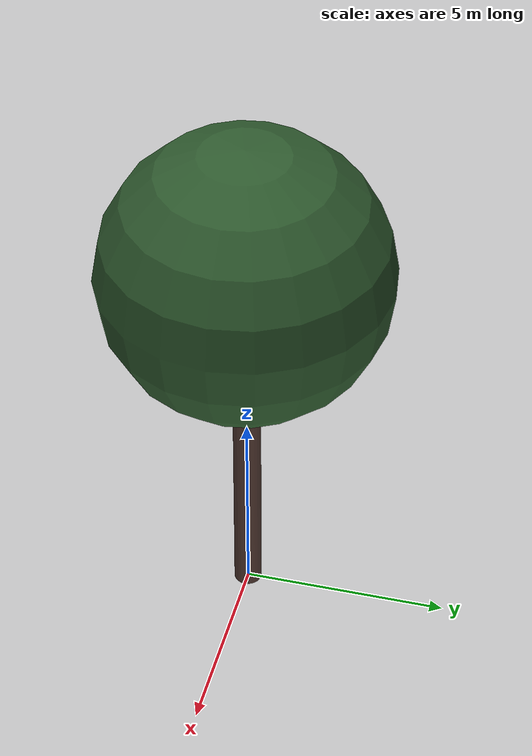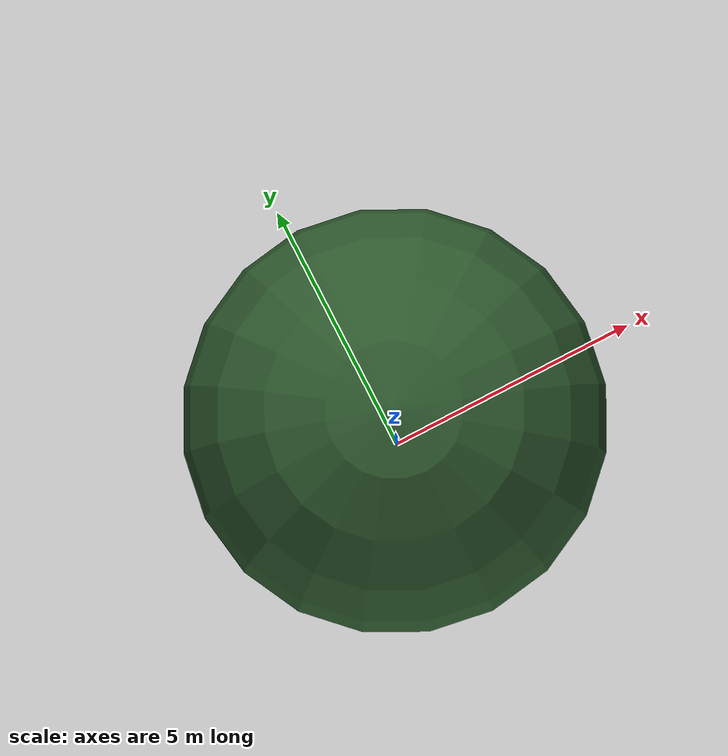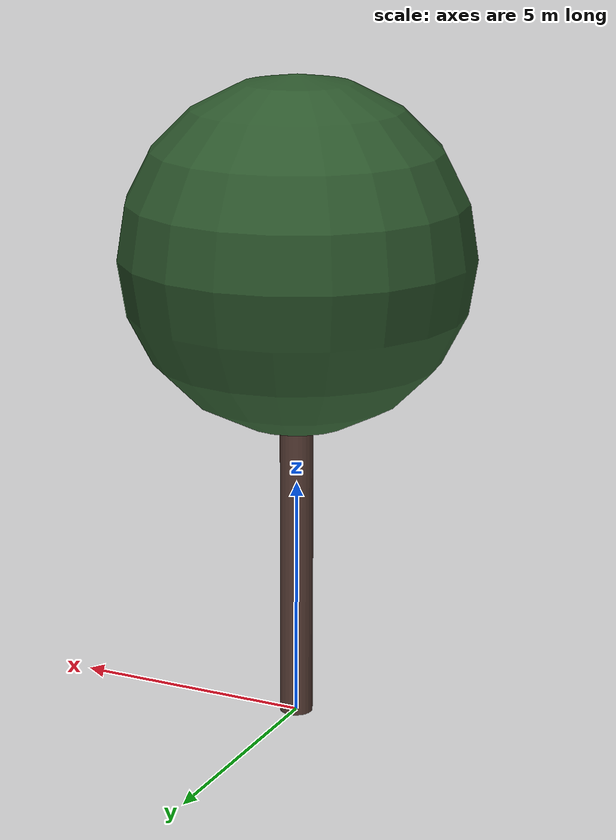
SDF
<?xml version="1.0" ?>
<sdf version="1.10">
  <model name="pin_parasol_10">
    <static>true</static>

    <!-- Tronc -->
    <link name="trunk">
      <pose>0 0 4.331814073943979 0 0 0</pose>
      <visual name="trunk_visual">
        <geometry>
          <cylinder>
            <radius>0.34015239884453896</radius>
            <length>8.663628147887959</length>
          </cylinder>
        </geometry>
        <material>
          <ambient>0.36 0.25 0.22 1</ambient>
          <diffuse>0.36 0.25 0.22 1</diffuse>
          <specular>0.1 0.1 0.1 1</specular>
        </material>
      </visual>
      <collision name="trunk_collision">
        <geometry>
          <cylinder>
            <radius>0.34015239884453896</radius>
            <length>8.663628147887959</length>
          </cylinder>
        </geometry>
      </collision>
    </link>

    <!-- Feuillage -->
    <link name="crown">
      <pose>0 0 9.74013570368988 0 0 0</pose>
      <visual name="crown_visual">
        <geometry>
          <sphere>
              <radius>3.58835851933974</radius>
            </sphere>
        </geometry>
        <material>
          <ambient>0.18 0.35 0.18 1</ambient>
          <diffuse>0.18 0.35 0.18 1</diffuse>
          <specular>0.1 0.1 0.1 1</specular>
        </material>
      </visual>
      <collision name="crown_collision">
        <geometry>
          <sphere>
            <radius>2.8706868154717924</radius>
          </sphere>
        </geometry>
      </collision>
    </link>

    <!-- Joint tronc-feuillage -->
    <joint name="trunk_crown_joint" type="fixed">
      <parent>trunk</parent>
      <child>crown</child>
    </joint>

  </model>
</sdf>
